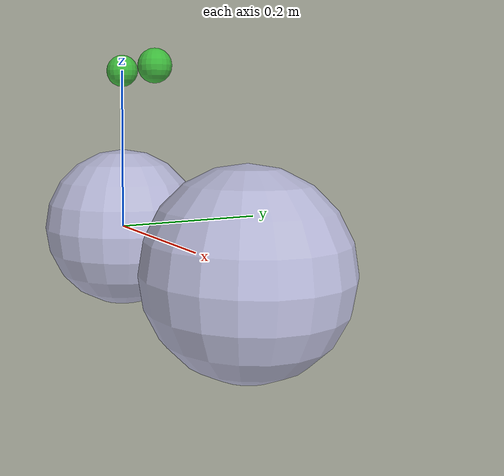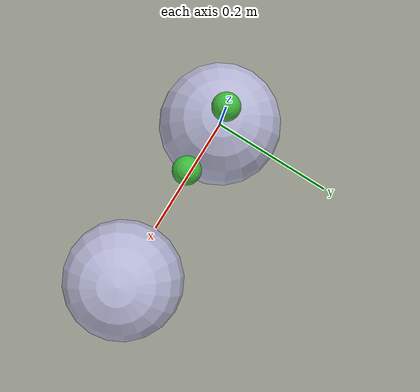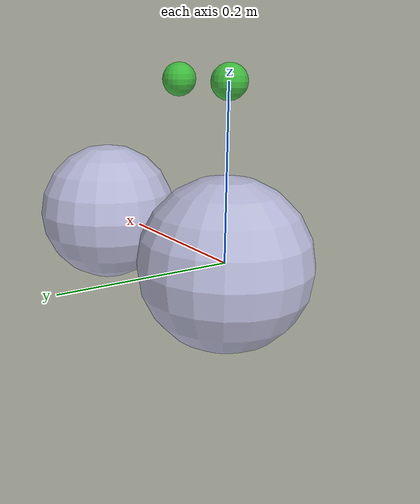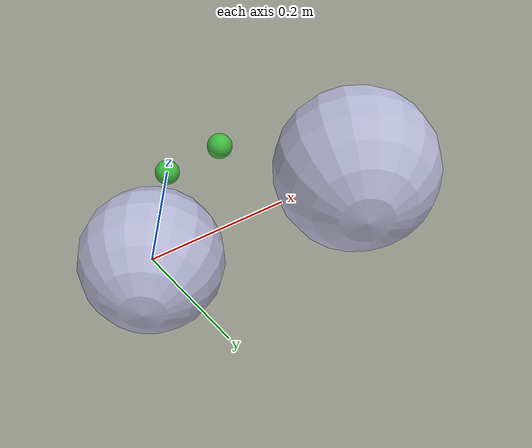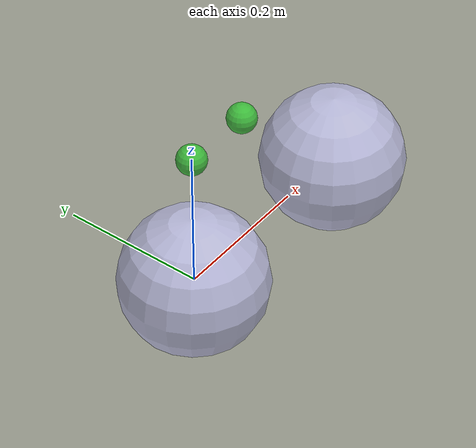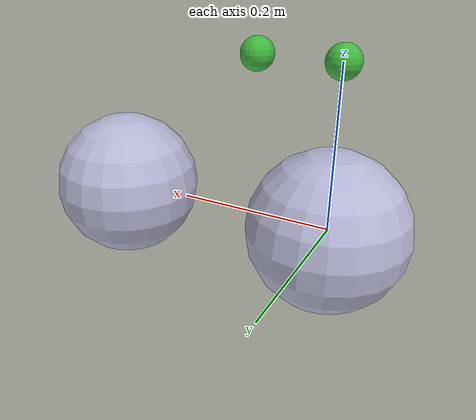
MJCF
<?xml version="1.0" encoding="UTF-8"?>
<mujoco model="brain_development">
  <compiler angle="radian" coordinate="local"/>

  <worldbody>
    <!-- Brain regions -->
    <body name="cortex" pos="0.0 0 0">
      <geom type="sphere" size="0.1" rgba="0.8 0.8 1.0 0.7"/>
      <joint type="free"/>
    </body>
    <body name="hippocampus" pos="0.3 0 0">
      <geom type="sphere" size="0.1" rgba="0.8 0.8 1.0 0.7"/>
      <joint type="free"/>
    </body>
    <body name="excitatory_cell_0" pos="0.0 0.0 0.2">
      <geom type="sphere" size="0.02" rgba="0.2 0.8 0.2 0.8"/>
      <joint type="free"/>
    </body>
    <body name="inhibitory_cell_1" pos="0.1 0.0 0.2">
      <geom type="sphere" size="0.02" rgba="0.2 0.8 0.2 0.8"/>
      <joint type="free"/>
    </body>
  </worldbody>
</mujoco>
